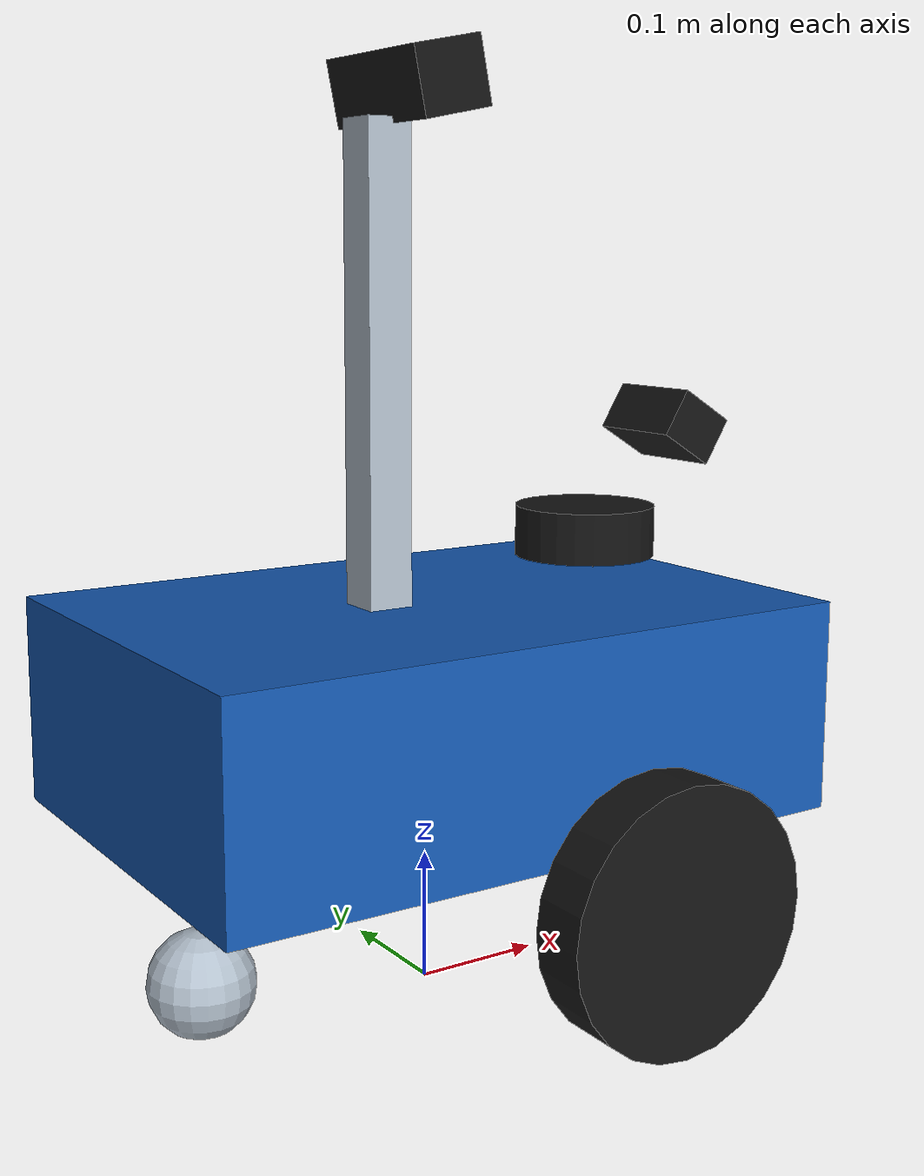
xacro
<?xml version="1.0"?>
<robot xmlns:xacro="http://www.ros.org/wiki/xacro" name="dog_ia">
  <material name="blue"><color rgba="0.08 0.35 0.7 1"/></material>
  <material name="black"><color rgba="0.08 0.08 0.08 1"/></material>
  <material name="silver"><color rgba="0.7 0.75 0.8 1"/></material>
  <xacro:macro name="box_inertia" params="m x y z">
    <inertial><mass value="${m}"/><inertia ixx="${m*(y*y+z*z)/12}" ixy="0" ixz="0" iyy="${m*(x*x+z*z)/12}" iyz="0" izz="${m*(x*x+y*y)/12}"/></inertial>
  </xacro:macro>
  <link name="base_footprint"/>
  <joint name="base_joint" type="fixed"><parent link="base_footprint"/><child link="base_link"/><origin xyz="0 0 0.22"/></joint>
  <link name="base_link">
    <visual><geometry><box size="0.5 0.34 0.16"/></geometry><material name="blue"/></visual>
    <collision><geometry><box size="0.5 0.34 0.16"/></geometry></collision>
    <xacro:box_inertia m="8" x="0.5" y="0.34" z="0.16"/>
  </link>
  <gazebo reference="base_link"><material>Gazebo/Blue</material></gazebo>
  <xacro:macro name="wheel" params="side sign">
    <link name="${side}_wheel_link">
      <visual><origin rpy="${pi/2} 0 0"/><geometry><cylinder radius="0.1" length="0.045"/></geometry><material name="black"/></visual>
      <collision><origin rpy="${pi/2} 0 0"/><geometry><cylinder radius="0.1" length="0.045"/></geometry></collision>
      <inertial><mass value="0.5"/><inertia ixx="0.001334375" ixy="0" ixz="0" iyy="0.0025" iyz="0" izz="0.001334375"/></inertial>
    </link>
    <joint name="${side}_wheel_joint" type="continuous">
      <parent link="base_link"/><child link="${side}_wheel_link"/>
      <origin xyz="0.08 ${sign*0.195} -0.12"/><axis xyz="0 1 0"/>
      <dynamics damping="0.02" friction="0"/>
    </joint>
    <gazebo reference="${side}_wheel_link"><material>Gazebo/Black</material><mu1>1.0</mu1><mu2>1.0</mu2></gazebo>
  </xacro:macro>
  <xacro:wheel side="left" sign="1"/>
  <xacro:wheel side="right" sign="-1"/>
  <!-- A low-friction spherical caster approximates a passive ball wheel. -->
  <link name="caster_link">
    <visual><geometry><sphere radius="0.04"/></geometry><material name="silver"/></visual>
    <collision><geometry><sphere radius="0.04"/></geometry></collision>
    <inertial><mass value="0.15"/><inertia ixx="0.000096" ixy="0" ixz="0" iyy="0.000096" iyz="0" izz="0.000096"/></inertial>
  </link>
  <joint name="caster_joint" type="fixed"><parent link="base_link"/><child link="caster_link"/><origin xyz="-0.19 0 -0.18"/></joint>
  <gazebo reference="caster_link"><mu1>0.001</mu1><mu2>0.001</mu2><material>Gazebo/Grey</material></gazebo>
  <link name="lidar_link">
    <visual><geometry><cylinder radius="0.055" length="0.04"/></geometry><material name="black"/></visual>
    <collision><geometry><cylinder radius="0.055" length="0.04"/></geometry></collision>
    <xacro:box_inertia m="0.15" x="0.11" y="0.11" z="0.04"/>
  </link>
  <joint name="lidar_joint" type="fixed"><parent link="base_link"/><child link="lidar_link"/><origin xyz="0.15 0 0.12"/></joint>
  <link name="mast_link">
    <visual><geometry><box size="0.035 0.035 0.35"/></geometry><material name="silver"/></visual>
    <!-- Visual-only mast collision: avoids self-occlusion in this simplified ray model. -->
    <xacro:box_inertia m="0.2" x="0.035" y="0.035" z="0.35"/>
  </link>
  <joint name="mast_joint" type="fixed"><parent link="base_link"/><child link="mast_link"/><origin xyz="-0.04 0 0.255"/></joint>
  <link name="camera_link">
    <visual><geometry><box size="0.055 0.12 0.05"/></geometry><material name="black"/></visual>
    <collision><geometry><box size="0.055 0.12 0.05"/></geometry></collision>
    <xacro:box_inertia m="0.15" x="0.055" y="0.12" z="0.05"/>
  </link>
  <!-- Negative pitch points the camera upward by about 11.5 degrees. -->
  <joint name="camera_joint" type="fixed"><parent link="mast_link"/><child link="camera_link"/><origin xyz="0.025 0 0.2" rpy="0 -0.2 0"/></joint>
  <link name="camera_optical_frame"/>
  <joint name="camera_optical_joint" type="fixed"><parent link="camera_link"/><child link="camera_optical_frame"/><origin rpy="${-pi/2} 0 ${-pi/2}"/></joint>
  <gazebo reference="lidar_link">
    <sensor name="lidar" type="ray">
      <always_on>true</always_on><update_rate>10</update_rate><visualize>false</visualize>
      <ray><scan><horizontal><samples>360</samples><resolution>1</resolution><min_angle>${-pi}</min_angle><max_angle>${pi}</max_angle></horizontal></scan>
      <range><min>0.12</min><max>10</max><resolution>0.01</resolution></range></ray>
      <plugin name="lidar_ros" filename="libgazebo_ros_ray_sensor.so">
        <ros><remapping>~/out:=/scan</remapping></ros><output_type>sensor_msgs/LaserScan</output_type><frame_name>lidar_link</frame_name>
      </plugin>
    </sensor>
  </gazebo>
  <gazebo reference="camera_link">
    <sensor name="rgbd_camera" type="depth">
      <always_on>true</always_on><update_rate>10</update_rate>
      <camera><horizontal_fov>1.2</horizontal_fov><image><width>320</width><height>240</height><format>R8G8B8</format></image><clip><near>0.1</near><far>8</far></clip></camera>
      <plugin name="camera_ros" filename="libgazebo_ros_camera.so">
        <ros><namespace>/camera</namespace>
          <remapping>rgbd/image_raw:=/camera/image_raw</remapping>
          <remapping>rgbd/camera_info:=/camera/camera_info</remapping>
          <remapping>rgbd/depth/image_raw:=/camera/depth/image_raw</remapping>
          <remapping>rgbd/depth/camera_info:=/camera/depth/camera_info</remapping>
          <remapping>rgbd/points:=/camera/points</remapping>
        </ros>
        <camera_name>rgbd</camera_name><frame_name>camera_optical_frame</frame_name>
        <min_depth>0.1</min_depth><max_depth>8.0</max_depth>
      </plugin>
    </sensor>
  </gazebo>
  <link name="ground_camera_link"><visual><geometry><box size="0.05 0.08 0.04"/></geometry><material name="black"/></visual><xacro:box_inertia m="0.1" x="0.05" y="0.08" z="0.04"/></link>
  <joint name="ground_camera_joint" type="fixed"><parent link="base_link"/><child link="ground_camera_link"/><origin xyz="0.23 0 0.2" rpy="0 0.55 0"/></joint>
  <link name="ground_optical_frame"/>
  <joint name="ground_optical_joint" type="fixed"><parent link="ground_camera_link"/><child link="ground_optical_frame"/><origin rpy="${-pi/2} 0 ${-pi/2}"/></joint>
  <gazebo reference="ground_camera_link">
    <sensor name="ground_rgbd_camera" type="depth">
      <always_on>true</always_on><update_rate>10</update_rate>
      <camera><horizontal_fov>1.2</horizontal_fov><image><width>320</width><height>240</height><format>R8G8B8</format></image><clip><near>0.1</near><far>8</far></clip></camera>
      <plugin name="ground_camera_ros" filename="libgazebo_ros_camera.so">
        <ros><namespace>/ground</namespace>
          <remapping>rgbd/image_raw:=/ground/image_raw</remapping>
          <remapping>rgbd/ground_info:=/ground/ground_info</remapping>
          <remapping>rgbd/depth/image_raw:=/ground/depth/image_raw</remapping>
          <remapping>rgbd/depth/ground_info:=/ground/depth/ground_info</remapping>
          <remapping>rgbd/points:=/ground/points</remapping>
        </ros>
        <camera_name>rgbd</camera_name><frame_name>ground_optical_frame</frame_name>
        <min_depth>0.1</min_depth><max_depth>8.0</max_depth>
      </plugin>
    </sensor>
  </gazebo>
  <gazebo>
    <plugin name="drive" filename="libgazebo_ros_diff_drive.so">
      <ros><remapping>cmd_vel:=/cmd_vel_safe</remapping></ros>
      <update_rate>30</update_rate><left_joint>left_wheel_joint</left_joint><right_joint>right_wheel_joint</right_joint>
      <wheel_separation>0.39</wheel_separation><wheel_diameter>0.2</wheel_diameter>
      <max_wheel_torque>15</max_wheel_torque><max_wheel_acceleration>1.5</max_wheel_acceleration>
      <command_topic>cmd_vel_safe</command_topic><odometry_topic>odom</odometry_topic>
      <odometry_frame>odom</odometry_frame><robot_base_frame>base_footprint</robot_base_frame>
      <publish_odom>true</publish_odom><publish_odom_tf>true</publish_odom_tf><publish_wheel_tf>false</publish_wheel_tf>
    </plugin>
    <plugin name="wheel_states" filename="libgazebo_ros_joint_state_publisher.so">
      <update_rate>30</update_rate><joint_name>left_wheel_joint</joint_name><joint_name>right_wheel_joint</joint_name>
    </plugin>
  </gazebo>
</robot>
